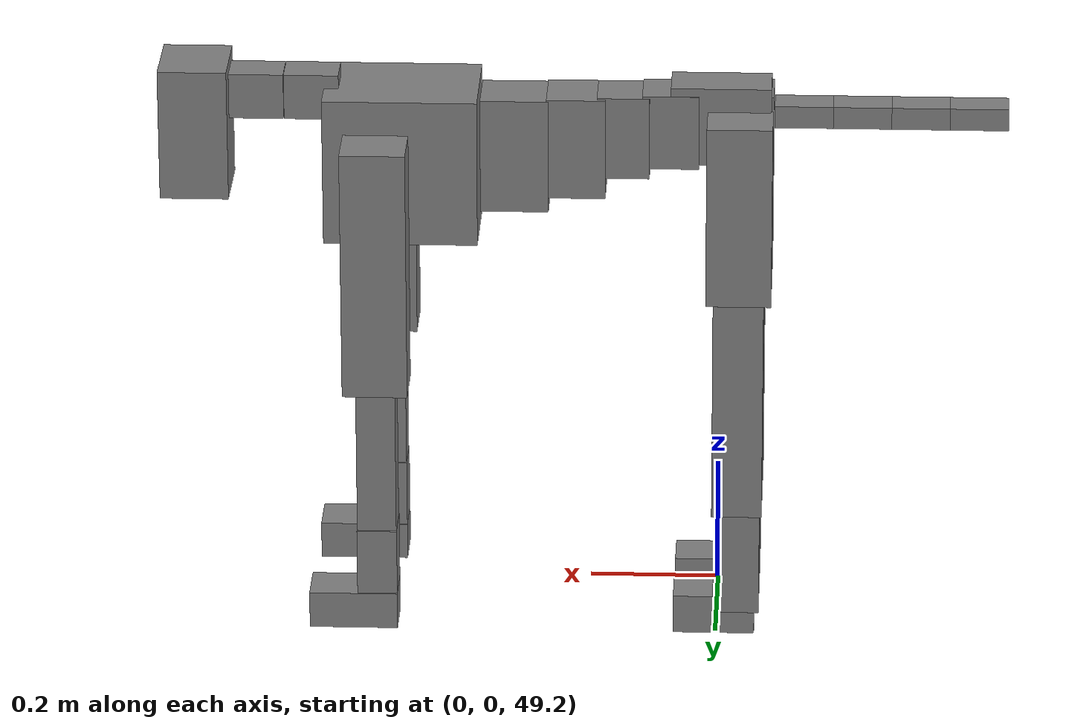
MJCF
<mujoco model="dog">

    <default>
        <joint armature="0.02" stiffness="1" damping="0.2" limited="true" />
        <geom condim="3" friction="1 0.05 0.05" margin="0.01" />
        <motor ctrllimited="true" ctrlrange="-1.0 1.0" forcelimited="true" gear="50" />
    </default>

    <compiler inertiafromgeom="true" angle="radian" />

    <option timestep="0.016" iterations="50" tolerance="1e-10" solver="Newton" jacobian="dense" cone="pyramidal" />

    <size nconmax="20000" njmax="60000" nstack="5000000" />
    <visual>
        <map force="0.1" zfar="30" />
        <rgba haze="0.15 0.25 0.35 1" />
        <quality shadowsize="2048" />
        <global offwidth="800" offheight="800" />
    </visual>

    <asset>
        <texture type="skybox" builtin="gradient" rgb1="0.3 0.5 0.7" rgb2="0 0 0" width="512" height="512" />
        <texture name="texplane" type="2d" builtin="checker" rgb1=".2 .3 .4" rgb2=".1 0.15 0.2" width="512" height="512" mark="cross" markrgb=".8 .8 .8" />
        <texture name="texgeom" type="cube" builtin="flat" mark="cross" width="127" height="1278" rgb1="0.8 0.6 0.4" rgb2="0.8 0.6 0.4" markrgb="1 1 1" random="0.01" />

        <material name="matplane" reflectance="0.3" texture="texplane" texrepeat="1 1" texuniform="true" />
        <material name="matgeom" texture="texgeom" texuniform="true" rgba="0.8 0.6 .4 1" />
    </asset>

    <worldbody>
        <geom name="floor" pos="0 0 0" size="0 0 .25" type="plane" material="matplane" condim="3" />

        <light directional="false" diffuse=".2 .2 .2" specular="0 0 0" pos="0 0 5" dir="0 0 -1" castshadow="false" />
        <light mode="targetbodycom" target="torso" directional="false" diffuse=".8 .8 .8" specular="0.3 0.3 0.3" pos="0 0 4.0" dir="0 0 -1" />

        <body name="root" pos="0 0 50">
            <freejoint name="root_1" />
            <geom type="box" pos="0 0 -0.02" size="0.0774  0.0358  0.063" density="2030" />

            <body name="spine1" pos="0.054 0 0">
                <joint name="spine1_y" axis="0 1 0" range="0 0.7" limited="true" />
                <geom type="box" pos="0.02375 0 -0.03" size="0.04375  0.0375  0.05985" density="2030" />

                <body name="spine2" pos="0.0612 0 0">
                    <joint name="spine2_y" axis="0 1 0" range="-0.15 0.15" limited="true" />
                    <geom type="box" pos="0.03555  0  -0.04" size="0.04055  0.039  0.06615" density="2030" />

                    <body name="spine3" pos="0.0730 0 0">
                        <joint name="spine3_y" axis="0 1 0" range="-0.15 0.15" limited="true" />
                        <geom type="box" pos="0.03555  0  -0.057" size="0.04555  0.0445  0.081" density="2030" />

                        <body name="spine4" pos="0.0780 0 0">
                            <joint name="spine4_y" axis="0 1 0" range="-0.15 0.15" limited="true" />
                            <geom type="box" pos="0.05265  0  -0.07" size="0.05265  0.045  0.09135" density="2030" />

                            <body name="torso" pos="0.1082 0 0">
                                <joint name="torso_y" axis="0 1 0" range="-0.15 0.15" limited="true" />
                                <geom type="box" pos="0.11925  0  -0.085" size="0.11925  0.085  0.11745" density="2030" />

                                <body name="neck1" pos="0.2160  0   0.0180">
                                    <joint name="neck1_y" axis="0 1 0" range="-1.2  -1" limited="true" />
                                    <geom type="box" pos="0.0423  0  0" size="0.0423  0.03  0.036" density="2325" />

                                    <body name="neck2" pos="0.0853  0  0">
                                        <joint name="neck2_y" axis="0 1 0" range="0.1  0" limited="true" />
                                        <geom type="box" pos="0.0423  0  0" size="0.0423  0.03  0.036" density="2325" />

                                        <body name="head" pos="0.0853  0  0">
                                            <joint name="head_y" axis="0 1 0" range="-0.3  -0.2" limited="true" />
                                            <geom type="box" pos="0.0531  0  -0.055" size="0.0531  0.06  0.1044" density="4030" />

                                        </body>
                                    </body>
                                </body>

                                <body name="front_shoulder" pos="0.156  0   -0.0480">
                                    <joint name="front_shoulder_y" axis="0 1 0" range="-1 1.5" limited="true" />
                                    <geom type="box" pos="0 0.13 -0.1740" size="0.0504  0.0431  0.2007" density="1158" />
                                    <geom type="box" pos="0 -0.13 -0.1740" size="0.0504  0.0431  0.2007" density="1158" />

                                    <body name="front_elbow" pos="0  0  -0.3480">
                                        <joint name="front_elbow_y" axis="0 1 0" range="-2 0" limited="true" />
                                        <geom type="box" pos="0 0.13 -0.1360" size="0.0304  0.0310  0.1360" density="1081" />
                                        <geom type="box" pos="0 -0.13 -0.1360" size="0.0304  0.0310  0.1360" density="1081" />

                                        <body name="front_wrist" pos="0  0  -0.2721">
                                            <joint name="front_wrist_y" axis="0 1 0" range="-0.2 0" limited="true" />
                                            <geom type="box" pos="0 0.13 -0.0540" size="0.0311  0.0346  0.0672" density="1664" />
                                            <geom type="box" pos="0 -0.13 -0.0540" size="0.0311  0.0346  0.0672" density="1664" />

                                            <body name="front_finger_end" pos="0  0  -0.1081">
                                                <joint name="front_finger_y" axis="0 1 0" range="-0.4 1" limited="true" />
                                                <geom type="box" pos="0.0375  0.13  -0.0143" size="0.0688  0.0375  0.0293" density="1515" />
                                                <geom type="box" pos="0.0375  -0.13  -0.0143" size="0.0688  0.0375  0.0293" density="1515" />

                                            </body>

                                        </body>
                                    </body>
                                </body>

                            </body>
                        </body>
                    </body>
                </body>
            </body>

            <body name="back_hip" pos="-0.03 0 -0.018">
                <joint name="back_hip_y" axis="0 1 0" range="-1.5 0.3" limited="true" />
                <geom type="box" pos="0 0.07 -0.1241" size="0.0505  0.0396  0.1469" density="1154" />
                <geom type="box" pos="0 -0.07 -0.1241" size="0.0505  0.0396  0.1469" density="1154" />

                <body name="back_knee" pos="0  0  -0.2483">
                    <joint name="back_knee_y" axis="0 1 0" range="0 2.8" limited="true" />
                    <geom type="box" pos="0 0.07 -0.1823" size="0.0391  0.0386  0.1979" density="1227" />
                    <geom type="box" pos="0 -0.07 -0.1823" size="0.0391  0.0386  0.1979" density="1227" />

                    <body name="back_ankle" pos="0  0  -0.3647">
                        <joint name="back_ankle_y" axis="0 1 0" range="-2.2 0" limited="true" />
                        <geom type="box" pos="0 0.07 -0.0852" size="0.0359  0.0359  0.0965" density="1284" />
                        <geom type="box" pos="0 -0.07 -0.0852" size="0.0359  0.0359  0.0965" density="1284" />

                        <body name="back_toe_end" pos="0  0  -0.1705">
                            <joint name="back_toe_y" axis="0 1 0" range="-0.4 1" limited="true" />
                            <geom type="box" pos="0.0347  0.07  -0.0162" size="0.0637  0.0347  0.0312" density="1515" />
                            <geom type="box" pos="0.0347  -0.07  -0.0162" size="0.0637  0.0347  0.0312" density="1515" />

                        </body>
                    </body>
                </body>
            </body>

            <body name="tail1" pos="-0.074 0 -0.006">
                <joint name="tail1_y" axis="0 1 0" range="-0.2 0.2" limited="true" />
                <geom type="box" pos="-0.0536  0  0" size="0.045  0.025  0.0175" density="1587" />

                <body name="tail2" pos="-0.09 0 0">
                    <joint name="tail2_y" axis="0 1 0" range="-0.2 0.2" limited="true" />
                    <geom type="box" pos="-0.0536  0  0" size="0.045  0.025  0.0175" density="1587" />

                    <body name="tail3" pos="-0.09 0 0">
                        <joint name="tail3_y" axis="0 1 0" range="-0.2 0.2" limited="true" />
                        <geom type="box" pos="-0.0536  0  0" size="0.045  0.025  0.0175" density="1587" />

                        <body name="tail4" pos="-0.09 0 0">
                            <joint name="tail4_y" axis="0 1 0" range="-0.2 0.2" limited="true" />
                            <geom type="box" pos="-0.0536  0  0" size="0.045  0.025  0.0175" density="1587" />

                        </body>
                    </body>
                </body>
            </body>
        </body>
    </worldbody>

    <actuator>
        <motor joint="spine1_y" forcerange="-150 150     " />
        <motor joint="spine2_y" forcerange="-150 150     " />
        <motor joint="spine3_y" forcerange="-150 150     " />
        <motor joint="spine4_y" forcerange="-150 150     " />
        <motor joint="torso_y" forcerange="-150 150     " />
        <motor joint="neck1_y" forcerange="-100 100       " />
        <motor joint="neck2_y" forcerange="-100 100       " />
        <motor joint="head_y" forcerange="-150 150       " />
        <motor joint="front_shoulder_y" forcerange="-189.26 198.08" />
        <motor joint="front_elbow_y" forcerange="-164.09 161.59" />
        <motor joint="front_wrist_y" forcerange="-129.32 147.47" />
        <motor joint="front_finger_y" forcerange="-62.56 97.66" />
        <motor joint="back_hip_y" forcerange="-348.56 379.92" />
        <motor joint="back_knee_y" forcerange="-397.75 363.04" />
        <motor joint="back_angle_y" forcerange="-237.65 237.43" />
        <motor joint="back_toe_y" forcerange="-100.29 97.58" />
        <motor joint="tail1_y" forcerange="-50 50     " />
        <motor joint="tail2_y" forcerange="-50 50     " />
        <motor joint="tail3_y" forcerange="-50 50     " />
        <motor joint="tail4_y" forcerange="-50 50     " />
    </actuator>
</mujoco>
